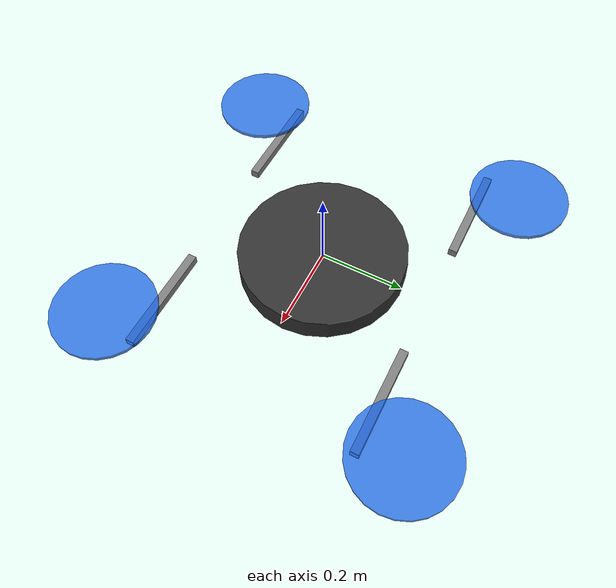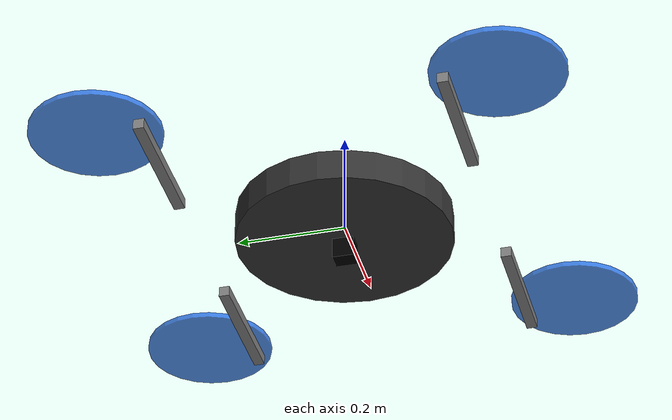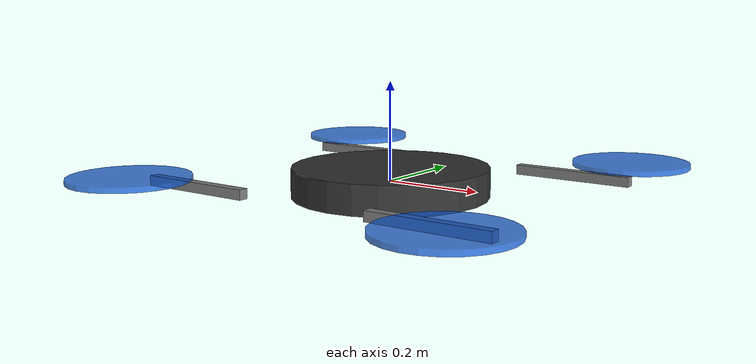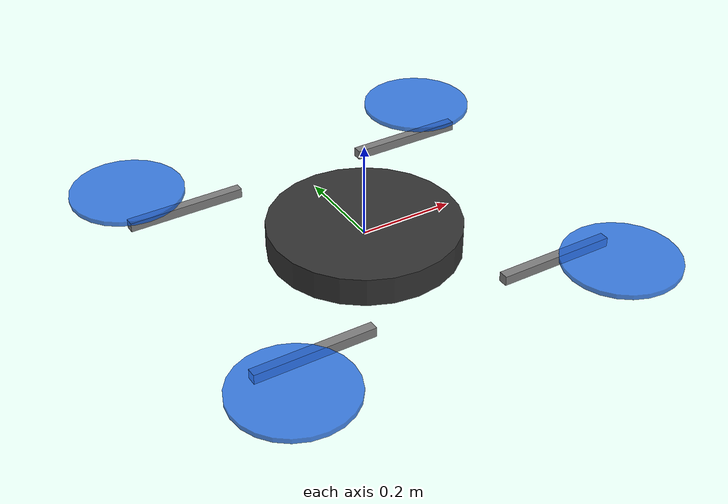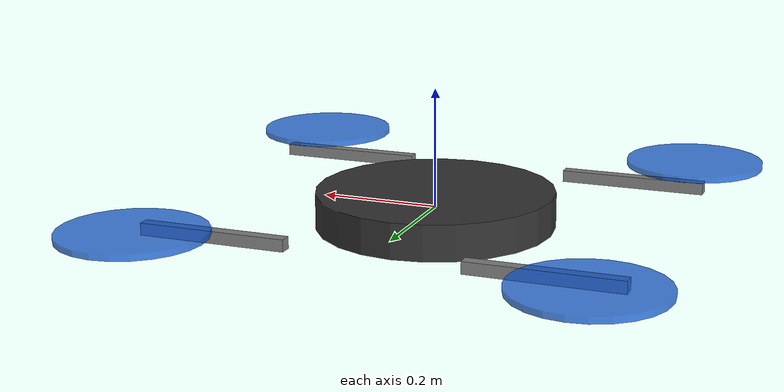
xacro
<?xml version="1.0"?>
<robot name="quadrotor" xmlns:xacro="http://www.ros.org/wiki/xacro">

  <xacro:property name="body_mass"   value="1.5"/>
  <xacro:property name="body_radius" value="0.2"/>
  <xacro:property name="arm_length"  value="0.25"/>
  <xacro:property name="rotor_mass"  value="0.05"/>

  <!-- Base link (drone body) -->
  <link name="base_link">
    <inertial>
      <mass value="${body_mass}"/>
      <inertia ixx="0.02" iyy="0.02" izz="0.04" ixy="0" ixz="0" iyz="0"/>
    </inertial>
    <visual>
      <geometry><cylinder radius="${body_radius}" length="0.06"/></geometry>
      <material name="dark_gray"><color rgba="0.2 0.2 0.2 1.0"/></material>
    </visual>
    <collision>
      <geometry><cylinder radius="${body_radius}" length="0.06"/></geometry>
    </collision>
  </link>

  <!-- Rotor macro -->
  <xacro:macro name="rotor" params="name x y">
    <link name="${name}_arm">
      <visual>
        <origin xyz="${x/2} ${y/2} 0"/>
        <geometry><box size="${arm_length} 0.02 0.02"/></geometry>
        <material name="gray"><color rgba="0.5 0.5 0.5 1"/></material>
      </visual>
      <inertial>
        <mass value="0.1"/>
        <inertia ixx="0.001" iyy="0.001" izz="0.001" ixy="0" ixz="0" iyz="0"/>
      </inertial>
    </link>
    <joint name="${name}_joint" type="fixed">
      <parent link="base_link"/><child link="${name}_arm"/>
      <origin xyz="${x} ${y} 0" rpy="0 0 0"/>
    </joint>
    <link name="${name}_rotor">
      <visual>
        <geometry><cylinder radius="0.12" length="0.01"/></geometry>
        <material name="blue"><color rgba="0.1 0.4 0.9 0.8"/></material>
      </visual>
      <inertial>
        <mass value="${rotor_mass}"/>
        <inertia ixx="0.0001" iyy="0.0001" izz="0.0002" ixy="0" ixz="0" iyz="0"/>
      </inertial>
    </link>
    <joint name="${name}_rotor_joint" type="continuous">
      <parent link="${name}_arm"/><child link="${name}_rotor"/>
      <origin xyz="${x} ${y} 0.02" rpy="0 0 0"/>
      <axis xyz="0 0 1"/>
    </joint>
  </xacro:macro>

  <xacro:rotor name="front_left"  x=" 0.18" y=" 0.18"/>
  <xacro:rotor name="front_right" x=" 0.18" y="-0.18"/>
  <xacro:rotor name="back_left"   x="-0.18" y=" 0.18"/>
  <xacro:rotor name="back_right"  x="-0.18" y="-0.18"/>

  <!-- Downward-facing camera -->
  <link name="camera_link">
    <visual>
      <geometry><box size="0.04 0.04 0.03"/></geometry>
      <material name="black"><color rgba="0 0 0 1"/></material>
    </visual>
    <inertial>
      <mass value="0.05"/>
      <inertia ixx="0.0001" iyy="0.0001" izz="0.0001" ixy="0" ixz="0" iyz="0"/>
    </inertial>
  </link>
  <joint name="camera_joint" type="fixed">
    <parent link="base_link"/><child link="camera_link"/>
    <!-- Pointing downward: rotate 90 deg around Y -->
    <origin xyz="0 0 -0.05" rpy="0 1.5708 0"/>
  </joint>

  <!-- Gazebo camera plugin -->
  <gazebo reference="camera_link">
    <sensor type="camera" name="downward_camera">
      <update_rate>30.0</update_rate>
      <camera name="downward">
        <horizontal_fov>1.3962634</horizontal_fov>
        <image>
          <width>640</width><height>480</height>
          <format>R8G8B8</format>
        </image>
        <clip><near>0.02</near><far>300</far></clip>
      </camera>
      <plugin name="camera_plugin" filename="libgazebo_ros_camera.so">
        <ros>
          <namespace>drone</namespace>
          <remapping>image_raw:=camera/image_raw</remapping>
          <remapping>camera_info:=camera/camera_info</remapping>
        </ros>
        <camera_name>downward_camera</camera_name>
        <frame_name>camera_link</frame_name>
      </plugin>
    </sensor>
  </gazebo>

  <!-- IMU plugin -->
  <gazebo reference="base_link">
    <sensor name="imu_sensor" type="imu">
      <always_on>true</always_on>
      <update_rate>100</update_rate>
      <plugin filename="libgazebo_ros_imu_sensor.so" name="imu_plugin">
        <ros>
          <namespace>drone</namespace>
          <remapping>~/out:=imu</remapping>
        </ros>
        <initial_orientation_as_reference>false</initial_orientation_as_reference>
      </plugin>
    </sensor>
  </gazebo>

  <!-- Planar move plugin (simplified 6-DOF control) -->
  <gazebo>
    <plugin name="gazebo_ros_planar_move"
            filename="libgazebo_ros_planar_move.so">
      <ros>
        <namespace>drone</namespace>
        <remapping>cmd_vel:=cmd_vel</remapping>
      </ros>
      <update_rate>100</update_rate>
      <publish_rate>10</publish_rate>
      <publish_odom>true</publish_odom>
      <publish_odom_tf>true</publish_odom_tf>
      <odometry_frame>odom</odometry_frame>
      <robot_base_frame>base_link</robot_base_frame>
    </plugin>
  </gazebo>

</robot>
